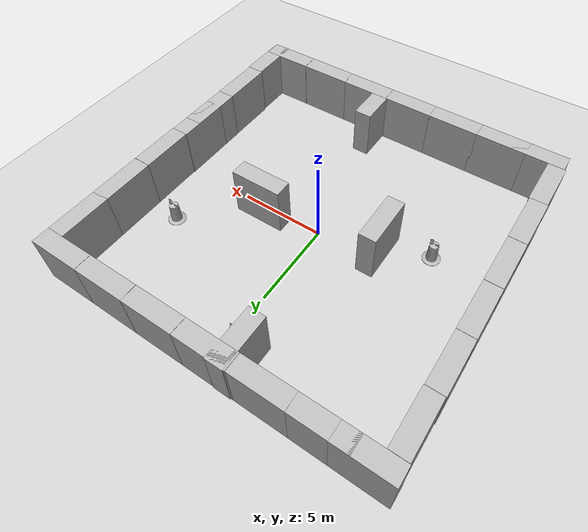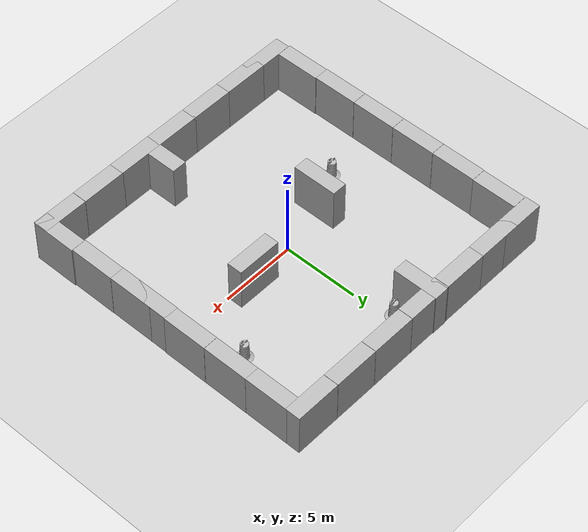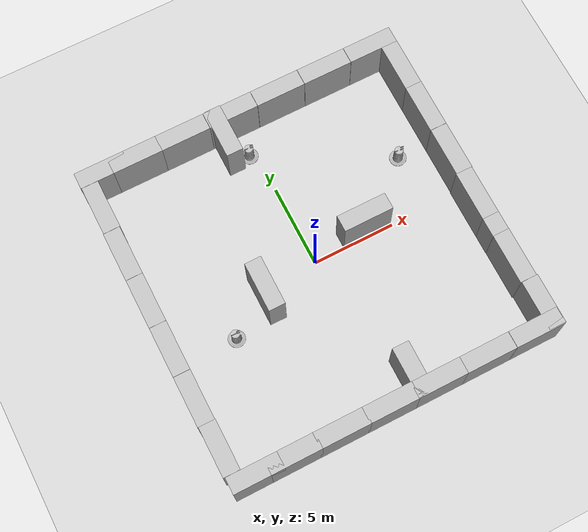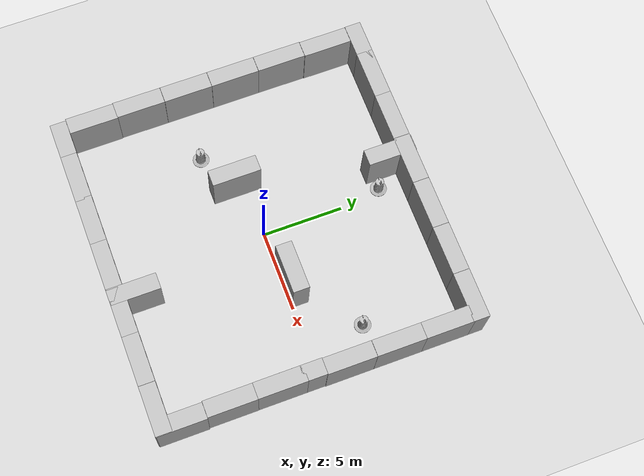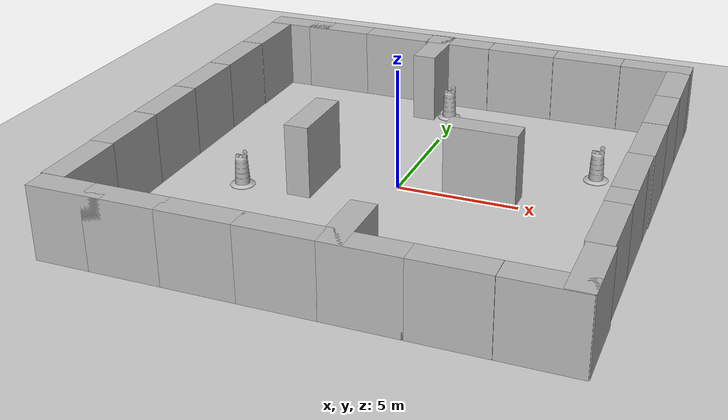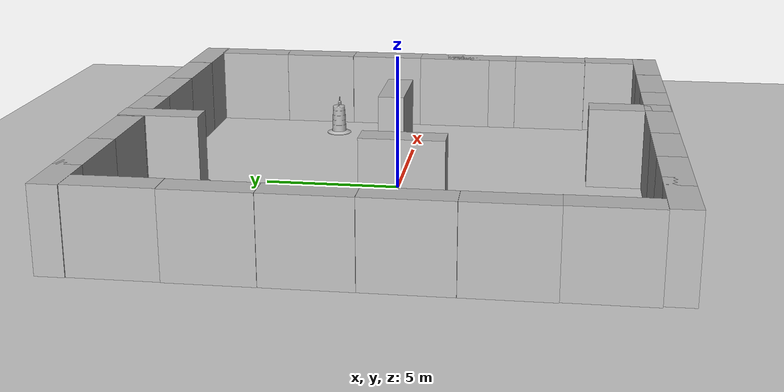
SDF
<sdf version="1.7">
 <world name="default">
  <plugin name="gazebo_ros_state" filename="libgazebo_ros_state.so">
   <ros>
    <argument>model_states:=model_states_plug</argument>
    <argument>link_states:=link_states_plug</argument>
   </ros>
   <update_rate>1.0</update_rate>
  </plugin>
  <light name="sun" type="directional">
   <pose>0 0 10 0 -0 0</pose>
   <diffuse>0.8 0.8 0.8 1</diffuse>
   <specular>0.2 0.2 0.2 1</specular>
   <attenuation>
    <range>1000</range>
    <constant>0.9</constant>
    <linear>0.01</linear>
    <quadratic>0.001</quadratic>
   </attenuation>
   <direction>-0.5 0.1 -0.9</direction>
   <spot><inner_angle>0</inner_angle><outer_angle>0</outer_angle><falloff>0</falloff></spot>
  </light>
  <model name="ground_plane">
   <static>1</static>
   <link name="link">
    <collision name="collision">
     <geometry><plane><normal>0 0 1</normal><size>100 100</size></plane></geometry>
     <surface>
      <contact><collide_bitmask>65535</collide_bitmask></contact>
      <friction><ode><mu>100</mu><mu2>50</mu2></ode></friction>
     </surface>
    </collision>
    <visual name="visual">
     <cast_shadows>0</cast_shadows>
     <geometry><plane><normal>0 0 1</normal><size>100 100</size></plane></geometry>
     <material>
      <script><uri>file://media/materials/scripts/gazebo.material</uri><name>Gazebo/Grey</name></script>
     </material>
    </visual>
   </link>
  </model>
  <gravity>0 0 -9.8</gravity>
  <magnetic_field>6e-06 2.3e-05 -4.2e-05</magnetic_field>
  <atmosphere type="adiabatic"/>
  <physics type="ode">
   <max_step_size>0.001</max_step_size>
   <real_time_factor>1</real_time_factor>
   <real_time_update_rate>1000</real_time_update_rate>
  </physics>
  <scene><ambient>0.4 0.4 0.4 1</ambient><background>0.7 0.7 0.7 1</background><shadows>1</shadows></scene>
  <audio><device>default</device></audio>
  <spherical_coordinates>
   <surface_model>EARTH_WGS84</surface_model>
   <latitude_deg>0</latitude_deg>
   <longitude_deg>0</longitude_deg>
   <elevation>0</elevation>
   <heading_deg>0</heading_deg>
  </spherical_coordinates>
  <model name="brick_box_3x1x3">
   <static>1</static>
   <link name="chassis">
    <pose>0 0 1.5 0 -0 0</pose>
    <collision name="collision"><geometry><box><size>3 1 3</size></box></geometry></collision>
    <visual name="visual">
     <geometry><mesh><uri>model://brick_box_3x1x3/meshes/simple_box.dae</uri><scale>3 1 3</scale></mesh></geometry>
     <material>
      <script>
       <uri>model://brick_box_3x1x3/materials/scripts</uri>
       <uri>model://brick_box_3x1x3/materials/textures</uri>
       <name>BrickBox/Diffuse</name>
      </script>
     </material>
    </visual>
   </link>
   <pose>8.4883 9.49696 0 0 -0 0</pose>
  </model>
  <model name="brick_box_3x1x3_0">
   <static>1</static>
   <link name="chassis">
    <pose>0 0 1.5 0 -0 0</pose>
    <collision name="collision"><geometry><box><size>3 1 3</size></box></geometry></collision>
    <visual name="visual">
     <geometry><mesh><uri>model://brick_box_3x1x3/meshes/simple_box.dae</uri><scale>3 1 3</scale></mesh></geometry>
     <material>
      <script>
       <uri>model://brick_box_3x1x3/materials/scripts</uri>
       <uri>model://brick_box_3x1x3/materials/textures</uri>
       <name>BrickBox/Diffuse</name>
      </script>
     </material>
    </visual>
   </link>
   <pose>5.47783 9.49696 0 0 -0 0</pose>
  </model>
  <model name="brick_box_3x1x3_1">
   <static>1</static>
   <link name="chassis">
    <pose>0 0 1.5 0 -0 0</pose>
    <collision name="collision"><geometry><box><size>3 1 3</size></box></geometry></collision>
    <visual name="visual">
     <geometry><mesh><uri>model://brick_box_3x1x3/meshes/simple_box.dae</uri><scale>3 1 3</scale></mesh></geometry>
     <material>
      <script>
       <uri>model://brick_box_3x1x3/materials/scripts</uri>
       <uri>model://brick_box_3x1x3/materials/textures</uri>
       <name>BrickBox/Diffuse</name>
      </script>
     </material>
    </visual>
   </link>
   <pose>2.46735 9.49696 0 0 -0 0</pose>
  </model>
  <model name="brick_box_3x1x3_2">
   <static>1</static>
   <link name="chassis">
    <pose>0 0 1.5 0 -0 0</pose>
    <collision name="collision"><geometry><box><size>3 1 3</size></box></geometry></collision>
    <visual name="visual">
     <geometry><mesh><uri>model://brick_box_3x1x3/meshes/simple_box.dae</uri><scale>3 1 3</scale></mesh></geometry>
     <material>
      <script>
       <uri>model://brick_box_3x1x3/materials/scripts</uri>
       <uri>model://brick_box_3x1x3/materials/textures</uri>
       <name>BrickBox/Diffuse</name>
      </script>
     </material>
    </visual>
   </link>
   <pose>-0.543123 9.49696 0 0 -0 0</pose>
  </model>
  <model name="brick_box_3x1x3_3">
   <static>1</static>
   <link name="chassis">
    <pose>0 0 1.5 0 -0 0</pose>
    <collision name="collision"><geometry><box><size>3 1 3</size></box></geometry></collision>
    <visual name="visual">
     <geometry><mesh><uri>model://brick_box_3x1x3/meshes/simple_box.dae</uri><scale>3 1 3</scale></mesh></geometry>
     <material>
      <script>
       <uri>model://brick_box_3x1x3/materials/scripts</uri>
       <uri>model://brick_box_3x1x3/materials/textures</uri>
       <name>BrickBox/Diffuse</name>
      </script>
     </material>
    </visual>
   </link>
   <pose>-3.5536 9.49696 0 0 -0 0</pose>
  </model>
  <model name="brick_box_3x1x3_4">
   <static>1</static>
   <link name="chassis">
    <pose>0 0 1.5 0 -0 0</pose>
    <collision name="collision"><geometry><box><size>3 1 3</size></box></geometry></collision>
    <visual name="visual">
     <geometry><mesh><uri>model://brick_box_3x1x3/meshes/simple_box.dae</uri><scale>3 1 3</scale></mesh></geometry>
     <material>
      <script>
       <uri>model://brick_box_3x1x3/materials/scripts</uri>
       <uri>model://brick_box_3x1x3/materials/textures</uri>
       <name>BrickBox/Diffuse</name>
      </script>
     </material>
    </visual>
   </link>
   <pose>-6.53304 9.49696 0 0 -0 0</pose>
  </model>
  <model name="brick_box_3x1x3_5">
   <static>1</static>
   <link name="chassis">
    <pose>0 0 1.5 0 -0 0</pose>
    <collision name="collision"><geometry><box><size>3 1 3</size></box></geometry></collision>
    <visual name="visual">
     <geometry><mesh><uri>model://brick_box_3x1x3/meshes/simple_box.dae</uri><scale>3 1 3</scale></mesh></geometry>
     <material>
      <script>
       <uri>model://brick_box_3x1x3/materials/scripts</uri>
       <uri>model://brick_box_3x1x3/materials/textures</uri>
       <name>BrickBox/Diffuse</name>
      </script>
     </material>
    </visual>
   </link>
   <pose>-8.55037 9.49697 0 0 -0 0</pose>
  </model>
  <model name="brick_box_3x1x3_6">
   <static>1</static>
   <link name="chassis">
    <pose>0 0 1.5 0 -0 0</pose>
    <collision name="collision"><geometry><box><size>3 1 3</size></box></geometry></collision>
    <visual name="visual">
     <geometry><mesh><uri>model://brick_box_3x1x3/meshes/simple_box.dae</uri><scale>3 1 3</scale></mesh></geometry>
     <material>
      <script>
       <uri>model://brick_box_3x1x3/materials/scripts</uri>
       <uri>model://brick_box_3x1x3/materials/textures</uri>
       <name>BrickBox/Diffuse</name>
      </script>
     </material>
    </visual>
   </link>
   <pose>8.48829 -9.528 0 0 -0 0</pose>
  </model>
  <model name="brick_box_3x1x3_7">
   <static>1</static>
   <link name="chassis">
    <pose>0 0 1.5 0 -0 0</pose>
    <collision name="collision"><geometry><box><size>3 1 3</size></box></geometry></collision>
    <visual name="visual">
     <geometry><mesh><uri>model://brick_box_3x1x3/meshes/simple_box.dae</uri><scale>3 1 3</scale></mesh></geometry>
     <material>
      <script>
       <uri>model://brick_box_3x1x3/materials/scripts</uri>
       <uri>model://brick_box_3x1x3/materials/textures</uri>
       <name>BrickBox/Diffuse</name>
      </script>
     </material>
    </visual>
   </link>
   <pose>5.47782 -9.528 0 0 -0 0</pose>
  </model>
  <model name="brick_box_3x1x3_8">
   <static>1</static>
   <link name="chassis">
    <pose>0 0 1.5 0 -0 0</pose>
    <collision name="collision"><geometry><box><size>3 1 3</size></box></geometry></collision>
    <visual name="visual">
     <geometry><mesh><uri>model://brick_box_3x1x3/meshes/simple_box.dae</uri><scale>3 1 3</scale></mesh></geometry>
     <material>
      <script>
       <uri>model://brick_box_3x1x3/materials/scripts</uri>
       <uri>model://brick_box_3x1x3/materials/textures</uri>
       <name>BrickBox/Diffuse</name>
      </script>
     </material>
    </visual>
   </link>
   <pose>2.56045 -9.528 0 0 -0 0</pose>
  </model>
  <model name="brick_box_3x1x3_9">
   <static>1</static>
   <link name="chassis">
    <pose>0 0 1.5 0 -0 0</pose>
    <collision name="collision"><geometry><box><size>3 1 3</size></box></geometry></collision>
    <visual name="visual">
     <geometry><mesh><uri>model://brick_box_3x1x3/meshes/simple_box.dae</uri><scale>3 1 3</scale></mesh></geometry>
     <material>
      <script>
       <uri>model://brick_box_3x1x3/materials/scripts</uri>
       <uri>model://brick_box_3x1x3/materials/textures</uri>
       <name>BrickBox/Diffuse</name>
      </script>
     </material>
    </visual>
   </link>
   <pose>-0.418988 -9.528 0 0 -0 0</pose>
  </model>
  <model name="brick_box_3x1x3_10">
   <static>1</static>
   <link name="chassis">
    <pose>0 0 1.5 0 -0 0</pose>
    <collision name="collision"><geometry><box><size>3 1 3</size></box></geometry></collision>
    <visual name="visual">
     <geometry><mesh><uri>model://brick_box_3x1x3/meshes/simple_box.dae</uri><scale>3 1 3</scale></mesh></geometry>
     <material>
      <script>
       <uri>model://brick_box_3x1x3/materials/scripts</uri>
       <uri>model://brick_box_3x1x3/materials/textures</uri>
       <name>BrickBox/Diffuse</name>
      </script>
     </material>
    </visual>
   </link>
   <pose>-3.33635 -9.528 0 0 -0 0</pose>
  </model>
  <model name="brick_box_3x1x3_11">
   <static>1</static>
   <link name="chassis">
    <pose>0 0 1.5 0 -0 0</pose>
    <collision name="collision"><geometry><box><size>3 1 3</size></box></geometry></collision>
    <visual name="visual">
     <geometry><mesh><uri>model://brick_box_3x1x3/meshes/simple_box.dae</uri><scale>3 1 3</scale></mesh></geometry>
     <material>
      <script>
       <uri>model://brick_box_3x1x3/materials/scripts</uri>
       <uri>model://brick_box_3x1x3/materials/textures</uri>
       <name>BrickBox/Diffuse</name>
      </script>
     </material>
    </visual>
   </link>
   <pose>-6.22269 -9.528 0 0 -0 0</pose>
  </model>
  <model name="brick_box_3x1x3_12">
   <static>1</static>
   <link name="chassis">
    <pose>0 0 1.5 0 -0 0</pose>
    <collision name="collision"><geometry><box><size>3 1 3</size></box></geometry></collision>
    <visual name="visual">
     <geometry><mesh><uri>model://brick_box_3x1x3/meshes/simple_box.dae</uri><scale>3 1 3</scale></mesh></geometry>
     <material>
      <script>
       <uri>model://brick_box_3x1x3/materials/scripts</uri>
       <uri>model://brick_box_3x1x3/materials/textures</uri>
       <name>BrickBox/Diffuse</name>
      </script>
     </material>
    </visual>
   </link>
   <pose>-8.42623 -9.528 0 0 -0 0</pose>
  </model>
  <model name="brick_box_3x1x3_5_clone_clone">
   <static>1</static>
   <link name="chassis">
    <pose>0 0 1.5 0 -0 0</pose>
    <collision name="collision"><geometry><box><size>3 1 3</size></box></geometry></collision>
    <visual name="visual">
     <geometry><mesh><uri>model://brick_box_3x1x3/meshes/simple_box.dae</uri><scale>3 1 3</scale></mesh></geometry>
     <material>
      <script>
       <uri>model://brick_box_3x1x3/materials/scripts</uri>
       <uri>model://brick_box_3x1x3/materials/textures</uri>
       <name>BrickBox/Diffuse</name>
      </script>
     </material>
    </visual>
   </link>
   <pose>-9.52076 7.4886 0 0 -0 1.57</pose>
  </model>
  <model name="brick_box_3x1x3_5_clone_clone_clone">
   <static>1</static>
   <link name="chassis">
    <pose>0 0 1.5 0 -0 0</pose>
    <collision name="collision"><geometry><box><size>3 1 3</size></box></geometry></collision>
    <visual name="visual">
     <geometry><mesh><uri>model://brick_box_3x1x3/meshes/simple_box.dae</uri><scale>3 1 3</scale></mesh></geometry>
     <material>
      <script>
       <uri>model://brick_box_3x1x3/materials/scripts</uri>
       <uri>model://brick_box_3x1x3/materials/textures</uri>
       <name>BrickBox/Diffuse</name>
      </script>
     </material>
    </visual>
   </link>
   <pose>-9.55276 4.48036 0 0 -0 1.57</pose>
  </model>
  <model name="brick_box_3x1x3_5_clone_clone_clone_clone">
   <static>1</static>
   <link name="chassis">
    <pose>0 0 1.5 0 -0 0</pose>
    <collision name="collision"><geometry><box><size>3 1 3</size></box></geometry></collision>
    <visual name="visual">
     <geometry><mesh><uri>model://brick_box_3x1x3/meshes/simple_box.dae</uri><scale>3 1 3</scale></mesh></geometry>
     <material>
      <script>
       <uri>model://brick_box_3x1x3/materials/scripts</uri>
       <uri>model://brick_box_3x1x3/materials/textures</uri>
       <name>BrickBox/Diffuse</name>
      </script>
     </material>
    </visual>
   </link>
   <pose>-9.55276 1.47212 0 0 -0 1.57</pose>
  </model>
  <model name="brick_box_3x1x3_5_clone_clone_clone_clone_0">
   <static>1</static>
   <link name="chassis">
    <pose>0 0 1.5 0 -0 0</pose>
    <collision name="collision"><geometry><box><size>3 1 3</size></box></geometry></collision>
    <visual name="visual">
     <geometry><mesh><uri>model://brick_box_3x1x3/meshes/simple_box.dae</uri><scale>3 1 3</scale></mesh></geometry>
     <material>
      <script>
       <uri>model://brick_box_3x1x3/materials/scripts</uri>
       <uri>model://brick_box_3x1x3/materials/textures</uri>
       <name>BrickBox/Diffuse</name>
      </script>
     </material>
    </visual>
   </link>
   <pose>-9.55276 -1.53612 0 0 -0 1.57</pose>
  </model>
  <model name="brick_box_3x1x3_5_clone_clone_clone_clone_1">
   <static>1</static>
   <link name="chassis">
    <pose>0 0 1.5 0 -0 0</pose>
    <collision name="collision"><geometry><box><size>3 1 3</size></box></geometry></collision>
    <visual name="visual">
     <geometry><mesh><uri>model://brick_box_3x1x3/meshes/simple_box.dae</uri><scale>3 1 3</scale></mesh></geometry>
     <material>
      <script>
       <uri>model://brick_box_3x1x3/materials/scripts</uri>
       <uri>model://brick_box_3x1x3/materials/textures</uri>
       <name>BrickBox/Diffuse</name>
      </script>
     </material>
    </visual>
   </link>
   <pose>-9.55276 -4.54436 0 0 -0 1.57</pose>
  </model>
  <model name="brick_box_3x1x3_5_clone_clone_clone_clone_2">
   <static>1</static>
   <link name="chassis">
    <pose>0 0 1.5 0 -0 0</pose>
    <collision name="collision"><geometry><box><size>3 1 3</size></box></geometry></collision>
    <visual name="visual">
     <geometry><mesh><uri>model://brick_box_3x1x3/meshes/simple_box.dae</uri><scale>3 1 3</scale></mesh></geometry>
     <material>
      <script>
       <uri>model://brick_box_3x1x3/materials/scripts</uri>
       <uri>model://brick_box_3x1x3/materials/textures</uri>
       <name>BrickBox/Diffuse</name>
      </script>
     </material>
    </visual>
   </link>
   <pose>-9.52076 -7.5206 0 0 -0 1.57</pose>
  </model>
  <model name="brick_box_3x1x3_5_clone_clone_clone_clone_3">
   <static>1</static>
   <link name="chassis">
    <pose>0 0 1.5 0 -0 0</pose>
    <collision name="collision"><geometry><box><size>3 1 3</size></box></geometry></collision>
    <visual name="visual">
     <geometry><mesh><uri>model://brick_box_3x1x3/meshes/simple_box.dae</uri><scale>3 1 3</scale></mesh></geometry>
     <material>
      <script>
       <uri>model://brick_box_3x1x3/materials/scripts</uri>
       <uri>model://brick_box_3x1x3/materials/textures</uri>
       <name>BrickBox/Diffuse</name>
      </script>
     </material>
    </visual>
   </link>
   <pose>9.48876 7.5846 0 0 -0 1.57</pose>
  </model>
  <model name="brick_box_3x1x3_5_clone_clone_clone_clone_4">
   <static>1</static>
   <link name="chassis">
    <pose>0 0 1.5 0 -0 0</pose>
    <collision name="collision"><geometry><box><size>3 1 3</size></box></geometry></collision>
    <visual name="visual">
     <geometry><mesh><uri>model://brick_box_3x1x3/meshes/simple_box.dae</uri><scale>3 1 3</scale></mesh></geometry>
     <material>
      <script>
       <uri>model://brick_box_3x1x3/materials/scripts</uri>
       <uri>model://brick_box_3x1x3/materials/textures</uri>
       <name>BrickBox/Diffuse</name>
      </script>
     </material>
    </visual>
   </link>
   <pose>9.48876 4.64037 0 0 -0 1.57</pose>
  </model>
  <model name="brick_box_3x1x3_5_clone_clone_clone_clone_5">
   <static>1</static>
   <link name="chassis">
    <pose>0 0 1.5 0 -0 0</pose>
    <collision name="collision"><geometry><box><size>3 1 3</size></box></geometry></collision>
    <visual name="visual">
     <geometry><mesh><uri>model://brick_box_3x1x3/meshes/simple_box.dae</uri><scale>3 1 3</scale></mesh></geometry>
     <material>
      <script>
       <uri>model://brick_box_3x1x3/materials/scripts</uri>
       <uri>model://brick_box_3x1x3/materials/textures</uri>
       <name>BrickBox/Diffuse</name>
      </script>
     </material>
    </visual>
   </link>
   <pose>9.48876 1.63213 0 0 -0 1.57</pose>
  </model>
  <model name="brick_box_3x1x3_5_clone_clone_clone_clone_6">
   <static>1</static>
   <link name="chassis">
    <pose>0 0 1.5 0 -0 0</pose>
    <collision name="collision"><geometry><box><size>3 1 3</size></box></geometry></collision>
    <visual name="visual">
     <geometry><mesh><uri>model://brick_box_3x1x3/meshes/simple_box.dae</uri><scale>3 1 3</scale></mesh></geometry>
     <material>
      <script>
       <uri>model://brick_box_3x1x3/materials/scripts</uri>
       <uri>model://brick_box_3x1x3/materials/textures</uri>
       <name>BrickBox/Diffuse</name>
      </script>
     </material>
    </visual>
   </link>
   <pose>9.45675 -1.34411 0 0 -0 1.57</pose>
  </model>
  <model name="brick_box_3x1x3_5_clone_clone_clone_clone_8">
   <static>1</static>
   <link name="chassis">
    <pose>0 0 1.5 0 -0 0</pose>
    <collision name="collision"><geometry><box><size>3 1 3</size></box></geometry></collision>
    <visual name="visual">
     <geometry><mesh><uri>model://brick_box_3x1x3/meshes/simple_box.dae</uri><scale>3 1 3</scale></mesh></geometry>
     <material>
      <script>
       <uri>model://brick_box_3x1x3/materials/scripts</uri>
       <uri>model://brick_box_3x1x3/materials/textures</uri>
       <name>BrickBox/Diffuse</name>
      </script>
     </material>
    </visual>
   </link>
   <pose>9.52076 -8.48068 0 0 -0 1.57</pose>
  </model>
  <model name="brick_box_3x1x3_5_clone_clone_clone_clone_7">
   <static>1</static>
   <link name="chassis">
    <pose>0 0 1.5 0 -0 0</pose>
    <collision name="collision"><geometry><box><size>3 1 3</size></box></geometry></collision>
    <visual name="visual">
     <geometry><mesh><uri>model://brick_box_3x1x3/meshes/simple_box.dae</uri><scale>3 1 3</scale></mesh></geometry>
     <material>
      <script>
       <uri>model://brick_box_3x1x3/materials/scripts</uri>
       <uri>model://brick_box_3x1x3/materials/textures</uri>
       <name>BrickBox/Diffuse</name>
      </script>
     </material>
    </visual>
   </link>
   <pose>9.45675 -2.4962 0 0 -0 1.57</pose>
  </model>
  <model name="brick_box_3x1x3_5_clone_clone_clone_clone_10_clone">
   <static>1</static>
   <link name="chassis">
    <pose>0 0 1.5 0 -0 0</pose>
    <collision name="collision"><geometry><box><size>3 1 3</size></box></geometry></collision>
    <visual name="visual">
     <geometry><mesh><uri>model://brick_box_3x1x3/meshes/simple_box.dae</uri><scale>3 1 3</scale></mesh></geometry>
     <material>
      <script>
       <uri>model://brick_box_3x1x3/materials/scripts</uri>
       <uri>model://brick_box_3x1x3/materials/textures</uri>
       <name>BrickBox/Diffuse</name>
      </script>
     </material>
    </visual>
   </link>
   <pose>9.46409 -5.47609 0 0 -0 1.57</pose>
  </model>
  <model name="Construction Barrel">
   <link name="link">
    <inertial>
     <pose>0 0 0.4 0 -0 0</pose>
     <mass>500</mass>
     <inertia><ixx>51.2096</ixx><iyy>51.2096</iyy><izz>25</izz><ixy>0</ixy><ixz>0</ixz><iyz>0</iyz></inertia>
    </inertial>
    <collision name="collision">
     <geometry><mesh><uri>model://construction_barrel/meshes/construction_barrel.dae</uri></mesh></geometry>
    </collision>
    <visual name="visual">
     <geometry><mesh><uri>model://construction_barrel/meshes/construction_barrel.dae</uri></mesh></geometry>
    </visual>
   </link>
   <pose>-0.403987 7.61219 -1e-06 0 5e-06 -3.1e-05</pose>
  </model>
  <model name="Construction Barrel_0">
   <link name="link">
    <inertial>
     <pose>0 0 0.4 0 -0 0</pose>
     <mass>500</mass>
     <inertia><ixx>51.2096</ixx><iyy>51.2096</iyy><izz>25</izz><ixy>0</ixy><ixz>0</ixz><iyz>0</iyz></inertia>
    </inertial>
    <collision name="collision">
     <geometry><mesh><uri>model://construction_barrel/meshes/construction_barrel.dae</uri></mesh></geometry>
    </collision>
    <visual name="visual">
     <geometry><mesh><uri>model://construction_barrel/meshes/construction_barrel.dae</uri></mesh></geometry>
    </visual>
   </link>
   <pose>-5.96186 -1.958 -2e-06 7e-06 -2e-06 -2.6e-05</pose>
  </model>
  <model name="Construction Barrel_1">
   <link name="link">
    <inertial>
     <pose>0 0 0.4 0 -0 0</pose>
     <mass>500</mass>
     <inertia><ixx>51.2096</ixx><iyy>51.2096</iyy><izz>25</izz><ixy>0</ixy><ixz>0</ixz><iyz>0</iyz></inertia>
    </inertial>
    <collision name="collision">
     <geometry><mesh><uri>model://construction_barrel/meshes/construction_barrel.dae</uri></mesh></geometry>
    </collision>
    <visual name="visual">
     <geometry><mesh><uri>model://construction_barrel/meshes/construction_barrel.dae</uri></mesh></geometry>
    </visual>
   </link>
   <pose>7.29382 3.51066 -2e-06 -5e-06 -4e-06 -3.4e-05</pose>
  </model>
  <model name="brick_box_3x1x3_5_clone_clone_clone_clone_15_clone_clone_clone_clone_clone">
   <static>1</static>
   <link name="chassis">
    <pose>0 0 1.5 0 -0 0</pose>
    <collision name="collision"><geometry><box><size>3 1 3</size></box></geometry></collision>
    <visual name="visual">
     <geometry><mesh><uri>model://brick_box_3x1x3/meshes/simple_box.dae</uri><scale>3 1 3</scale></mesh></geometry>
     <material>
      <script>
       <uri>model://brick_box_3x1x3/materials/scripts</uri>
       <uri>model://brick_box_3x1x3/materials/textures</uri>
       <name>BrickBox/Diffuse</name>
      </script>
     </material>
    </visual>
   </link>
   <pose>1.49827 -8.49669 0 0 -0 1.57</pose>
  </model>
  <model name="brick_box_3x1x3_5_clone_clone_clone_clone_15_clone_0_clone_clone">
   <static>1</static>
   <link name="chassis">
    <pose>0 0 1.5 0 -0 0</pose>
    <collision name="collision"><geometry><box><size>3 1 3</size></box></geometry></collision>
    <visual name="visual">
     <geometry><mesh><uri>model://brick_box_3x1x3/meshes/simple_box.dae</uri><scale>3 1 3</scale></mesh></geometry>
     <material>
      <script>
       <uri>model://brick_box_3x1x3/materials/scripts</uri>
       <uri>model://brick_box_3x1x3/materials/textures</uri>
       <name>BrickBox/Diffuse</name>
      </script>
     </material>
    </visual>
   </link>
   <pose>-1.44413 8.53363 0 0 -0 1.57</pose>
  </model>
  <model name="brick_box_3x1x3_5_clone_clone_clone_clone_15_clone_0_clone_clone_clone">
   <static>1</static>
   <link name="chassis">
    <pose>0 0 1.5 0 -0 0</pose>
    <collision name="collision"><geometry><box><size>3 1 3</size></box></geometry></collision>
    <visual name="visual">
     <geometry><mesh><uri>model://brick_box_3x1x3/meshes/simple_box.dae</uri><scale>3 1 3</scale></mesh></geometry>
     <material>
      <script>
       <uri>model://brick_box_3x1x3/materials/scripts</uri>
       <uri>model://brick_box_3x1x3/materials/textures</uri>
       <name>BrickBox/Diffuse</name>
      </script>
     </material>
    </visual>
   </link>
   <pose>-3.40571 -0.62054 0 0 -0 1.57</pose>
  </model>
  <model name="brick_box_3x1x3_0_clone">
   <static>1</static>
   <link name="chassis">
    <pose>0 0 1.5 0 -0 0</pose>
    <collision name="collision"><geometry><box><size>3 1 3</size></box></geometry></collision>
    <visual name="visual">
     <geometry><mesh><uri>model://brick_box_3x1x3/meshes/simple_box.dae</uri><scale>3 1 3</scale></mesh></geometry>
     <material>
      <script>
       <uri>model://brick_box_3x1x3/materials/scripts</uri>
       <uri>model://brick_box_3x1x3/materials/textures</uri>
       <name>BrickBox/Diffuse</name>
      </script>
     </material>
    </visual>
   </link>
   <pose>3.37068 0.508925 0 0 -0 0</pose>
  </model>
 </world>
</sdf>
